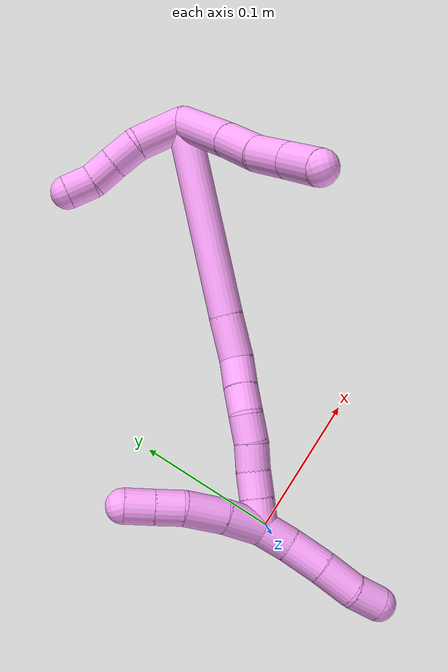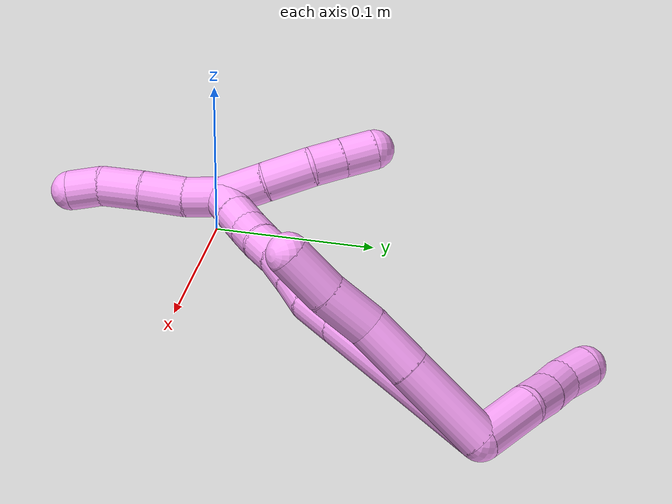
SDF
<sdf version="1.7">
 <world name="default">
  <model name="4">
   <static>0</static>
   <link name="4">
    <collision name="collision-cylinder-e_1_2_8">
     <pose>-0.020299 -0.009544 0.017297 0.504189 -0.798958 -0.216634</pose>
     <geometry><cylinder><radius>0.0125</radius><length>0.05665</length></cylinder></geometry>
     <surface>
      <friction><ode><mu>1.16</mu><mu2>1.16</mu2><slip1>0</slip1><slip2>0</slip2></ode></friction>
      <contact><ode><kp>1e+06</kp><kd>1</kd><max_vel>0</max_vel><min_depth>0.001</min_depth></ode></contact>
     </surface>
    </collision>
    <visual name="visual-cylinder-e_1_2_8">
     <pose>-0.020299 -0.009544 0.017297 0.504189 -0.798958 -0.216634</pose>
     <geometry><cylinder><radius>0.0125</radius><length>0.05665</length></cylinder></geometry>
     <material><ambient>1 0.65098 0.996078 1</ambient></material>
    </visual>
    <collision name="collision-cylinder-e_2_8_9">
     <pose>-0.052539 -0.025112 0.044328 0.554203 -0.806552 -0.241519</pose>
     <geometry><cylinder><radius>0.0125</radius><length>0.033084</length></cylinder></geometry>
     <surface>
      <friction><ode><mu>1.16</mu><mu2>1.16</mu2><slip1>0</slip1><slip2>0</slip2></ode></friction>
      <contact><ode><kp>1e+06</kp><kd>1</kd><max_vel>0</max_vel><min_depth>0.001</min_depth></ode></contact>
     </surface>
    </collision>
    <visual name="visual-cylinder-e_2_8_9">
     <pose>-0.052539 -0.025112 0.044328 0.554203 -0.806552 -0.241519</pose>
     <geometry><cylinder><radius>0.0125</radius><length>0.033084</length></cylinder></geometry>
     <material><ambient>1 0.65098 0.996078 1</ambient></material>
    </visual>
    <collision name="collision-cylinder-e_3_9_10">
     <pose>-0.073789 -0.035724 0.064716 0.406628 -0.676218 -0.144725</pose>
     <geometry><cylinder><radius>0.0125</radius><length>0.029746</length></cylinder></geometry>
     <surface>
      <friction><ode><mu>1.16</mu><mu2>1.16</mu2><slip1>0</slip1><slip2>0</slip2></ode></friction>
      <contact><ode><kp>1e+06</kp><kd>1</kd><max_vel>0</max_vel><min_depth>0.001</min_depth></ode></contact>
     </surface>
    </collision>
    <visual name="visual-cylinder-e_3_9_10">
     <pose>-0.073789 -0.035724 0.064716 0.406628 -0.676218 -0.144725</pose>
     <geometry><cylinder><radius>0.0125</radius><length>0.029746</length></cylinder></geometry>
     <material><ambient>1 0.65098 0.996078 1</ambient></material>
    </visual>
    <collision name="collision-cylinder-e_4_10_6">
     <pose>-0.093912 -0.044208 0.085407 0.370275 -0.787633 -0.155327</pose>
     <geometry><cylinder><radius>0.0125</radius><length>0.03052</length></cylinder></geometry>
     <surface>
      <friction><ode><mu>1.16</mu><mu2>1.16</mu2><slip1>0</slip1><slip2>0</slip2></ode></friction>
      <contact><ode><kp>1e+06</kp><kd>1</kd><max_vel>0</max_vel><min_depth>0.001</min_depth></ode></contact>
     </surface>
    </collision>
    <visual name="visual-cylinder-e_4_10_6">
     <pose>-0.093912 -0.044208 0.085407 0.370275 -0.787633 -0.155327</pose>
     <geometry><cylinder><radius>0.0125</radius><length>0.03052</length></cylinder></geometry>
     <material><ambient>1 0.65098 0.996078 1</ambient></material>
    </visual>
    <collision name="collision-cylinder-e_1_2_11">
     <pose>-0.00801 7.6e-05 -0.01729 -3.13719 -0.433849 3.12161</pose>
     <geometry><cylinder><radius>0.0125</radius><length>0.038112</length></cylinder></geometry>
     <surface>
      <friction><ode><mu>1.16</mu><mu2>1.16</mu2><slip1>0</slip1><slip2>0</slip2></ode></friction>
      <contact><ode><kp>1e+06</kp><kd>1</kd><max_vel>0</max_vel><min_depth>0.001</min_depth></ode></contact>
     </surface>
    </collision>
    <visual name="visual-cylinder-e_1_2_11">
     <pose>-0.00801 7.6e-05 -0.01729 -3.13719 -0.433849 3.12161</pose>
     <geometry><cylinder><radius>0.0125</radius><length>0.038112</length></cylinder></geometry>
     <material><ambient>1 0.65098 0.996078 1</ambient></material>
    </visual>
    <collision name="collision-cylinder-e_2_11_12">
     <pose>-0.018567 -0.002696 -0.044683 2.86683 -0.237985 -1.42601</pose>
     <geometry><cylinder><radius>0.0125</radius><length>0.021601</length></cylinder></geometry>
     <surface>
      <friction><ode><mu>1.16</mu><mu2>1.16</mu2><slip1>0</slip1><slip2>0</slip2></ode></friction>
      <contact><ode><kp>1e+06</kp><kd>1</kd><max_vel>0</max_vel><min_depth>0.001</min_depth></ode></contact>
     </surface>
    </collision>
    <visual name="visual-cylinder-e_2_11_12">
     <pose>-0.018567 -0.002696 -0.044683 2.86683 -0.237985 -1.42601</pose>
     <geometry><cylinder><radius>0.0125</radius><length>0.021601</length></cylinder></geometry>
     <material><ambient>1 0.65098 0.996078 1</ambient></material>
    </visual>
    <collision name="collision-cylinder-e_3_12_13">
     <pose>-0.024143 -0.008413 -0.063903 2.83671 -0.306936 -1.57763</pose>
     <geometry><cylinder><radius>0.0125</radius><length>0.020053</length></cylinder></geometry>
     <surface>
      <friction><ode><mu>1.16</mu><mu2>1.16</mu2><slip1>0</slip1><slip2>0</slip2></ode></friction>
      <contact><ode><kp>1e+06</kp><kd>1</kd><max_vel>0</max_vel><min_depth>0.001</min_depth></ode></contact>
     </surface>
    </collision>
    <visual name="visual-cylinder-e_3_12_13">
     <pose>-0.024143 -0.008413 -0.063903 2.83671 -0.306936 -1.57763</pose>
     <geometry><cylinder><radius>0.0125</radius><length>0.020053</length></cylinder></geometry>
     <material><ambient>1 0.65098 0.996078 1</ambient></material>
    </visual>
    <collision name="collision-cylinder-e_4_13_5">
     <pose>-0.030421 -0.011247 -0.082601 -3.13795 -0.326978 3.11954</pose>
     <geometry><cylinder><radius>0.0125</radius><length>0.020234</length></cylinder></geometry>
     <surface>
      <friction><ode><mu>1.16</mu><mu2>1.16</mu2><slip1>0</slip1><slip2>0</slip2></ode></friction>
      <contact><ode><kp>1e+06</kp><kd>1</kd><max_vel>0</max_vel><min_depth>0.001</min_depth></ode></contact>
     </surface>
    </collision>
    <visual name="visual-cylinder-e_4_13_5">
     <pose>-0.030421 -0.011247 -0.082601 -3.13795 -0.326978 3.11954</pose>
     <geometry><cylinder><radius>0.0125</radius><length>0.020234</length></cylinder></geometry>
     <material><ambient>1 0.65098 0.996078 1</ambient></material>
    </visual>
    <collision name="collision-cylinder-e_1_2_14">
     <pose>-0.028245 -0.066748 -0.006624 1.66971 -0.398555 -0.438805</pose>
     <geometry><cylinder><radius>0.0125</radius><length>0.145561</length></cylinder></geometry>
     <surface>
      <friction><ode><mu>1.16</mu><mu2>1.16</mu2><slip1>0</slip1><slip2>0</slip2></ode></friction>
      <contact><ode><kp>1e+06</kp><kd>1</kd><max_vel>0</max_vel><min_depth>0.001</min_depth></ode></contact>
     </surface>
    </collision>
    <visual name="visual-cylinder-e_1_2_14">
     <pose>-0.028245 -0.066748 -0.006624 1.66971 -0.398555 -0.438805</pose>
     <geometry><cylinder><radius>0.0125</radius><length>0.145561</length></cylinder></geometry>
     <material><ambient>1 0.65098 0.996078 1</ambient></material>
    </visual>
    <collision name="collision-cylinder-e_2_14_15">
     <pose>-0.063034 -0.148316 -0.0143 1.64164 -0.414879 -0.444403</pose>
     <geometry><cylinder><radius>0.0125</radius><length>0.032467</length></cylinder></geometry>
     <surface>
      <friction><ode><mu>1.16</mu><mu2>1.16</mu2><slip1>0</slip1><slip2>0</slip2></ode></friction>
      <contact><ode><kp>1e+06</kp><kd>1</kd><max_vel>0</max_vel><min_depth>0.001</min_depth></ode></contact>
     </surface>
    </collision>
    <visual name="visual-cylinder-e_2_14_15">
     <pose>-0.063034 -0.148316 -0.0143 1.64164 -0.414879 -0.444403</pose>
     <geometry><cylinder><radius>0.0125</radius><length>0.032467</length></cylinder></geometry>
     <material><ambient>1 0.65098 0.996078 1</ambient></material>
    </visual>
    <collision name="collision-cylinder-e_3_15_16">
     <pose>-0.076184 -0.171347 -0.016216 1.67565 -0.674811 -0.743151</pose>
     <geometry><cylinder><radius>0.0125</radius><length>0.02115</length></cylinder></geometry>
     <surface>
      <friction><ode><mu>1.16</mu><mu2>1.16</mu2><slip1>0</slip1><slip2>0</slip2></ode></friction>
      <contact><ode><kp>1e+06</kp><kd>1</kd><max_vel>0</max_vel><min_depth>0.001</min_depth></ode></contact>
     </surface>
    </collision>
    <visual name="visual-cylinder-e_3_15_16">
     <pose>-0.076184 -0.171347 -0.016216 1.67565 -0.674811 -0.743151</pose>
     <geometry><cylinder><radius>0.0125</radius><length>0.02115</length></cylinder></geometry>
     <material><ambient>1 0.65098 0.996078 1</ambient></material>
    </visual>
    <collision name="collision-cylinder-e_4_16_17">
     <pose>-0.088985 -0.187578 -0.017562 1.63085 -0.656848 -0.694419</pose>
     <geometry><cylinder><radius>0.0125</radius><length>0.020288</length></cylinder></geometry>
     <surface>
      <friction><ode><mu>1.16</mu><mu2>1.16</mu2><slip1>0</slip1><slip2>0</slip2></ode></friction>
      <contact><ode><kp>1e+06</kp><kd>1</kd><max_vel>0</max_vel><min_depth>0.001</min_depth></ode></contact>
     </surface>
    </collision>
    <visual name="visual-cylinder-e_4_16_17">
     <pose>-0.088985 -0.187578 -0.017562 1.63085 -0.656848 -0.694419</pose>
     <geometry><cylinder><radius>0.0125</radius><length>0.020288</length></cylinder></geometry>
     <material><ambient>1 0.65098 0.996078 1</ambient></material>
    </visual>
    <collision name="collision-cylinder-e_5_17_18">
     <pose>-0.099516 -0.204818 -0.019145 1.68965 -0.436916 -0.490122</pose>
     <geometry><cylinder><radius>0.0125</radius><length>0.020501</length></cylinder></geometry>
     <surface>
      <friction><ode><mu>1.16</mu><mu2>1.16</mu2><slip1>0</slip1><slip2>0</slip2></ode></friction>
      <contact><ode><kp>1e+06</kp><kd>1</kd><max_vel>0</max_vel><min_depth>0.001</min_depth></ode></contact>
     </surface>
    </collision>
    <visual name="visual-cylinder-e_5_17_18">
     <pose>-0.099516 -0.204818 -0.019145 1.68965 -0.436916 -0.490122</pose>
     <geometry><cylinder><radius>0.0125</radius><length>0.020501</length></cylinder></geometry>
     <material><ambient>1 0.65098 0.996078 1</ambient></material>
    </visual>
    <collision name="collision-cylinder-e_6_18_19">
     <pose>-0.10756 -0.22299 -0.022758 1.84435 -0.379416 -0.496182</pose>
     <geometry><cylinder><radius>0.0125</radius><length>0.020014</length></cylinder></geometry>
     <surface>
      <friction><ode><mu>1.16</mu><mu2>1.16</mu2><slip1>0</slip1><slip2>0</slip2></ode></friction>
      <contact><ode><kp>1e+06</kp><kd>1</kd><max_vel>0</max_vel><min_depth>0.001</min_depth></ode></contact>
     </surface>
    </collision>
    <visual name="visual-cylinder-e_6_18_19">
     <pose>-0.10756 -0.22299 -0.022758 1.84435 -0.379416 -0.496182</pose>
     <geometry><cylinder><radius>0.0125</radius><length>0.020014</length></cylinder></geometry>
     <material><ambient>1 0.65098 0.996078 1</ambient></material>
    </visual>
    <collision name="collision-cylinder-e_7_19_20">
     <pose>-0.116106 -0.240578 -0.026706 1.73562 -0.504902 -0.590985</pose>
     <geometry><cylinder><radius>0.0125</radius><length>0.02001</length></cylinder></geometry>
     <surface>
      <friction><ode><mu>1.16</mu><mu2>1.16</mu2><slip1>0</slip1><slip2>0</slip2></ode></friction>
      <contact><ode><kp>1e+06</kp><kd>1</kd><max_vel>0</max_vel><min_depth>0.001</min_depth></ode></contact>
     </surface>
    </collision>
    <visual name="visual-cylinder-e_7_19_20">
     <pose>-0.116106 -0.240578 -0.026706 1.73562 -0.504902 -0.590985</pose>
     <geometry><cylinder><radius>0.0125</radius><length>0.02001</length></cylinder></geometry>
     <material><ambient>1 0.65098 0.996078 1</ambient></material>
    </visual>
    <collision name="collision-cylinder-e_8_20_1">
     <pose>-0.126095 -0.257665 -0.029622 1.74415 -0.540634 -0.637205</pose>
     <geometry><cylinder><radius>0.0125</radius><length>0.020008</length></cylinder></geometry>
     <surface>
      <friction><ode><mu>1.16</mu><mu2>1.16</mu2><slip1>0</slip1><slip2>0</slip2></ode></friction>
      <contact><ode><kp>1e+06</kp><kd>1</kd><max_vel>0</max_vel><min_depth>0.001</min_depth></ode></contact>
     </surface>
    </collision>
    <visual name="visual-cylinder-e_8_20_1">
     <pose>-0.126095 -0.257665 -0.029622 1.74415 -0.540634 -0.637205</pose>
     <geometry><cylinder><radius>0.0125</radius><length>0.020008</length></cylinder></geometry>
     <material><ambient>1 0.65098 0.996078 1</ambient></material>
    </visual>
    <collision name="collision-cylinder-e_1_1_21">
     <pose>-0.135653 -0.255595 -0.040004 -2.27319 -0.309675 0.649377</pose>
     <geometry><cylinder><radius>0.0125</radius><length>0.028938</length></cylinder></geometry>
     <surface>
      <friction><ode><mu>1.16</mu><mu2>1.16</mu2><slip1>0</slip1><slip2>0</slip2></ode></friction>
      <contact><ode><kp>1e+06</kp><kd>1</kd><max_vel>0</max_vel><min_depth>0.001</min_depth></ode></contact>
     </surface>
    </collision>
    <visual name="visual-cylinder-e_1_1_21">
     <pose>-0.135653 -0.255595 -0.040004 -2.27319 -0.309675 0.649377</pose>
     <geometry><cylinder><radius>0.0125</radius><length>0.028938</length></cylinder></geometry>
     <material><ambient>1 0.65098 0.996078 1</ambient></material>
    </visual>
    <collision name="collision-cylinder-e_2_21_22">
     <pose>-0.144573 -0.235435 -0.059456 -2.40109 -0.305688 0.755611</pose>
     <geometry><cylinder><radius>0.0125</radius><length>0.029971</length></cylinder></geometry>
     <surface>
      <friction><ode><mu>1.16</mu><mu2>1.16</mu2><slip1>0</slip1><slip2>0</slip2></ode></friction>
      <contact><ode><kp>1e+06</kp><kd>1</kd><max_vel>0</max_vel><min_depth>0.001</min_depth></ode></contact>
     </surface>
    </collision>
    <visual name="visual-cylinder-e_2_21_22">
     <pose>-0.144573 -0.235435 -0.059456 -2.40109 -0.305688 0.755611</pose>
     <geometry><cylinder><radius>0.0125</radius><length>0.029971</length></cylinder></geometry>
     <material><ambient>1 0.65098 0.996078 1</ambient></material>
    </visual>
    <collision name="collision-cylinder-e_3_22_23">
     <pose>-0.151564 -0.221118 -0.07853 -2.63998 -0.249827 0.911411</pose>
     <geometry><cylinder><radius>0.0125</radius><length>0.02007</length></cylinder></geometry>
     <surface>
      <friction><ode><mu>1.16</mu><mu2>1.16</mu2><slip1>0</slip1><slip2>0</slip2></ode></friction>
      <contact><ode><kp>1e+06</kp><kd>1</kd><max_vel>0</max_vel><min_depth>0.001</min_depth></ode></contact>
     </surface>
    </collision>
    <visual name="visual-cylinder-e_3_22_23">
     <pose>-0.151564 -0.221118 -0.07853 -2.63998 -0.249827 0.911411</pose>
     <geometry><cylinder><radius>0.0125</radius><length>0.02007</length></cylinder></geometry>
     <material><ambient>1 0.65098 0.996078 1</ambient></material>
    </visual>
    <collision name="collision-cylinder-e_4_23_4">
     <pose>-0.15654 -0.211458 -0.095966 -2.63158 -0.239717 0.865583</pose>
     <geometry><cylinder><radius>0.0125</radius><length>0.021021</length></cylinder></geometry>
     <surface>
      <friction><ode><mu>1.16</mu><mu2>1.16</mu2><slip1>0</slip1><slip2>0</slip2></ode></friction>
      <contact><ode><kp>1e+06</kp><kd>1</kd><max_vel>0</max_vel><min_depth>0.001</min_depth></ode></contact>
     </surface>
    </collision>
    <visual name="visual-cylinder-e_4_23_4">
     <pose>-0.15654 -0.211458 -0.095966 -2.63158 -0.239717 0.865583</pose>
     <geometry><cylinder><radius>0.0125</radius><length>0.021021</length></cylinder></geometry>
     <material><ambient>1 0.65098 0.996078 1</ambient></material>
    </visual>
    <collision name="collision-cylinder-e_1_1_24">
     <pose>-0.13122 -0.275479 -0.024223 0.937285 0.002025 0.001025</pose>
     <geometry><cylinder><radius>0.0125</radius><length>0.023239</length></cylinder></geometry>
     <surface>
      <friction><ode><mu>1.16</mu><mu2>1.16</mu2><slip1>0</slip1><slip2>0</slip2></ode></friction>
      <contact><ode><kp>1e+06</kp><kd>1</kd><max_vel>0</max_vel><min_depth>0.001</min_depth></ode></contact>
     </surface>
    </collision>
    <visual name="visual-cylinder-e_1_1_24">
     <pose>-0.13122 -0.275479 -0.024223 0.937285 0.002025 0.001025</pose>
     <geometry><cylinder><radius>0.0125</radius><length>0.023239</length></cylinder></geometry>
     <material><ambient>1 0.65098 0.996078 1</ambient></material>
    </visual>
    <collision name="collision-cylinder-e_2_24_25">
     <pose>-0.133366 -0.295943 -0.008834 0.91665 -0.153835 -0.07601</pose>
     <geometry><cylinder><radius>0.0125</radius><length>0.028307</length></cylinder></geometry>
     <surface>
      <friction><ode><mu>1.16</mu><mu2>1.16</mu2><slip1>0</slip1><slip2>0</slip2></ode></friction>
      <contact><ode><kp>1e+06</kp><kd>1</kd><max_vel>0</max_vel><min_depth>0.001</min_depth></ode></contact>
     </surface>
    </collision>
    <visual name="visual-cylinder-e_2_24_25">
     <pose>-0.133366 -0.295943 -0.008834 0.91665 -0.153835 -0.07601</pose>
     <geometry><cylinder><radius>0.0125</radius><length>0.028307</length></cylinder></geometry>
     <material><ambient>1 0.65098 0.996078 1</ambient></material>
    </visual>
    <collision name="collision-cylinder-e_3_25_26">
     <pose>-0.137185 -0.318402 0.00705 0.995074 -0.121255 -0.065912</pose>
     <geometry><cylinder><radius>0.0125</radius><length>0.027286</length></cylinder></geometry>
     <surface>
      <friction><ode><mu>1.16</mu><mu2>1.16</mu2><slip1>0</slip1><slip2>0</slip2></ode></friction>
      <contact><ode><kp>1e+06</kp><kd>1</kd><max_vel>0</max_vel><min_depth>0.001</min_depth></ode></contact>
     </surface>
    </collision>
    <visual name="visual-cylinder-e_3_25_26">
     <pose>-0.137185 -0.318402 0.00705 0.995074 -0.121255 -0.065912</pose>
     <geometry><cylinder><radius>0.0125</radius><length>0.027286</length></cylinder></geometry>
     <material><ambient>1 0.65098 0.996078 1</ambient></material>
    </visual>
    <collision name="collision-cylinder-e_4_26_3">
     <pose>-0.137554 -0.338229 0.020641 0.937428 0.121318 0.061485</pose>
     <geometry><cylinder><radius>0.0125</radius><length>0.021168</length></cylinder></geometry>
     <surface>
      <friction><ode><mu>1.16</mu><mu2>1.16</mu2><slip1>0</slip1><slip2>0</slip2></ode></friction>
      <contact><ode><kp>1e+06</kp><kd>1</kd><max_vel>0</max_vel><min_depth>0.001</min_depth></ode></contact>
     </surface>
    </collision>
    <visual name="visual-cylinder-e_4_26_3">
     <pose>-0.137554 -0.338229 0.020641 0.937428 0.121318 0.061485</pose>
     <geometry><cylinder><radius>0.0125</radius><length>0.021168</length></cylinder></geometry>
     <material><ambient>1 0.65098 0.996078 1</ambient></material>
    </visual>
    <collision name="collision-sphere-3">
     <pose>-0.136273 -0.346698 0.026859 0 -0 0</pose>
     <geometry><sphere><radius>0.0125</radius></sphere></geometry>
     <surface>
      <friction><ode><mu>1.16</mu><mu2>1.16</mu2><slip1>0</slip1><slip2>0</slip2></ode></friction>
      <contact><ode><kp>1e+06</kp><kd>1</kd><max_vel>0</max_vel><min_depth>0.001</min_depth></ode></contact>
     </surface>
    </collision>
    <visual name="visual-sphere-3">
     <pose>-0.136273 -0.346698 0.026859 0 -0 0</pose>
     <geometry><sphere><radius>0.0125</radius></sphere></geometry>
     <material><ambient>1 0.65098 0.996078 1</ambient></material>
    </visual>
    <collision name="collision-sphere-26">
     <pose>-0.138835 -0.329761 0.014423 0 -0 0</pose>
     <geometry><sphere><radius>0.0125</radius></sphere></geometry>
     <surface>
      <friction><ode><mu>1.16</mu><mu2>1.16</mu2><slip1>0</slip1><slip2>0</slip2></ode></friction>
      <contact><ode><kp>1e+06</kp><kd>1</kd><max_vel>0</max_vel><min_depth>0.001</min_depth></ode></contact>
     </surface>
    </collision>
    <visual name="visual-sphere-26">
     <pose>-0.138835 -0.329761 0.014423 0 -0 0</pose>
     <geometry><sphere><radius>0.0125</radius></sphere></geometry>
     <material><ambient>1 0.65098 0.996078 1</ambient></material>
    </visual>
    <collision name="collision-sphere-25">
     <pose>-0.135534 -0.307042 -0.000323 0 -0 0</pose>
     <geometry><sphere><radius>0.0125</radius></sphere></geometry>
     <surface>
      <friction><ode><mu>1.16</mu><mu2>1.16</mu2><slip1>0</slip1><slip2>0</slip2></ode></friction>
      <contact><ode><kp>1e+06</kp><kd>1</kd><max_vel>0</max_vel><min_depth>0.001</min_depth></ode></contact>
     </surface>
    </collision>
    <visual name="visual-sphere-25">
     <pose>-0.135534 -0.307042 -0.000323 0 -0 0</pose>
     <geometry><sphere><radius>0.0125</radius></sphere></geometry>
     <material><ambient>1 0.65098 0.996078 1</ambient></material>
    </visual>
    <collision name="collision-sphere-24">
     <pose>-0.131197 -0.284843 -0.017344 0 -0 0</pose>
     <geometry><sphere><radius>0.0125</radius></sphere></geometry>
     <surface>
      <friction><ode><mu>1.16</mu><mu2>1.16</mu2><slip1>0</slip1><slip2>0</slip2></ode></friction>
      <contact><ode><kp>1e+06</kp><kd>1</kd><max_vel>0</max_vel><min_depth>0.001</min_depth></ode></contact>
     </surface>
    </collision>
    <visual name="visual-sphere-24">
     <pose>-0.131197 -0.284843 -0.017344 0 -0 0</pose>
     <geometry><sphere><radius>0.0125</radius></sphere></geometry>
     <material><ambient>1 0.65098 0.996078 1</ambient></material>
    </visual>
    <collision name="collision-sphere-4">
     <pose>-0.159035 -0.206474 -0.104877 0 -0 0</pose>
     <geometry><sphere><radius>0.0125</radius></sphere></geometry>
     <surface>
      <friction><ode><mu>1.16</mu><mu2>1.16</mu2><slip1>0</slip1><slip2>0</slip2></ode></friction>
      <contact><ode><kp>1e+06</kp><kd>1</kd><max_vel>0</max_vel><min_depth>0.001</min_depth></ode></contact>
     </surface>
    </collision>
    <visual name="visual-sphere-4">
     <pose>-0.159035 -0.206474 -0.104877 0 -0 0</pose>
     <geometry><sphere><radius>0.0125</radius></sphere></geometry>
     <material><ambient>1 0.65098 0.996078 1</ambient></material>
    </visual>
    <collision name="collision-sphere-23">
     <pose>-0.154045 -0.216442 -0.087056 0 -0 0</pose>
     <geometry><sphere><radius>0.0125</radius></sphere></geometry>
     <surface>
      <friction><ode><mu>1.16</mu><mu2>1.16</mu2><slip1>0</slip1><slip2>0</slip2></ode></friction>
      <contact><ode><kp>1e+06</kp><kd>1</kd><max_vel>0</max_vel><min_depth>0.001</min_depth></ode></contact>
     </surface>
    </collision>
    <visual name="visual-sphere-23">
     <pose>-0.154045 -0.216442 -0.087056 0 -0 0</pose>
     <geometry><sphere><radius>0.0125</radius></sphere></geometry>
     <material><ambient>1 0.65098 0.996078 1</ambient></material>
    </visual>
    <collision name="collision-sphere-22">
     <pose>-0.149083 -0.225793 -0.070005 0 -0 0</pose>
     <geometry><sphere><radius>0.0125</radius></sphere></geometry>
     <surface>
      <friction><ode><mu>1.16</mu><mu2>1.16</mu2><slip1>0</slip1><slip2>0</slip2></ode></friction>
      <contact><ode><kp>1e+06</kp><kd>1</kd><max_vel>0</max_vel><min_depth>0.001</min_depth></ode></contact>
     </surface>
    </collision>
    <visual name="visual-sphere-22">
     <pose>-0.149083 -0.225793 -0.070005 0 -0 0</pose>
     <geometry><sphere><radius>0.0125</radius></sphere></geometry>
     <material><ambient>1 0.65098 0.996078 1</ambient></material>
    </visual>
    <collision name="collision-sphere-21">
     <pose>-0.140063 -0.245076 -0.048907 0 -0 0</pose>
     <geometry><sphere><radius>0.0125</radius></sphere></geometry>
     <surface>
      <friction><ode><mu>1.16</mu><mu2>1.16</mu2><slip1>0</slip1><slip2>0</slip2></ode></friction>
      <contact><ode><kp>1e+06</kp><kd>1</kd><max_vel>0</max_vel><min_depth>0.001</min_depth></ode></contact>
     </surface>
    </collision>
    <visual name="visual-sphere-21">
     <pose>-0.140063 -0.245076 -0.048907 0 -0 0</pose>
     <geometry><sphere><radius>0.0125</radius></sphere></geometry>
     <material><ambient>1 0.65098 0.996078 1</ambient></material>
    </visual>
    <collision name="collision-sphere-1">
     <pose>-0.131244 -0.266114 -0.031101 0 -0 0</pose>
     <geometry><sphere><radius>0.0125</radius></sphere></geometry>
     <surface>
      <friction><ode><mu>1.16</mu><mu2>1.16</mu2><slip1>0</slip1><slip2>0</slip2></ode></friction>
      <contact><ode><kp>1e+06</kp><kd>1</kd><max_vel>0</max_vel><min_depth>0.001</min_depth></ode></contact>
     </surface>
    </collision>
    <visual name="visual-sphere-1">
     <pose>-0.131244 -0.266114 -0.031101 0 -0 0</pose>
     <geometry><sphere><radius>0.0125</radius></sphere></geometry>
     <material><ambient>1 0.65098 0.996078 1</ambient></material>
    </visual>
    <collision name="collision-sphere-11">
     <pose>-0.016021 0.000152 -0.03458 0 -0 0</pose>
     <geometry><sphere><radius>0.0125</radius></sphere></geometry>
     <surface>
      <friction><ode><mu>1.16</mu><mu2>1.16</mu2><slip1>0</slip1><slip2>0</slip2></ode></friction>
      <contact><ode><kp>1e+06</kp><kd>1</kd><max_vel>0</max_vel><min_depth>0.001</min_depth></ode></contact>
     </surface>
    </collision>
    <visual name="visual-sphere-11">
     <pose>-0.016021 0.000152 -0.03458 0 -0 0</pose>
     <geometry><sphere><radius>0.0125</radius></sphere></geometry>
     <material><ambient>1 0.65098 0.996078 1</ambient></material>
    </visual>
    <collision name="collision-sphere-6">
     <pose>-0.104726 -0.048104 0.095443 0 -0 0</pose>
     <geometry><sphere><radius>0.0125</radius></sphere></geometry>
     <surface>
      <friction><ode><mu>1.16</mu><mu2>1.16</mu2><slip1>0</slip1><slip2>0</slip2></ode></friction>
      <contact><ode><kp>1e+06</kp><kd>1</kd><max_vel>0</max_vel><min_depth>0.001</min_depth></ode></contact>
     </surface>
    </collision>
    <visual name="visual-sphere-6">
     <pose>-0.104726 -0.048104 0.095443 0 -0 0</pose>
     <geometry><sphere><radius>0.0125</radius></sphere></geometry>
     <material><ambient>1 0.65098 0.996078 1</ambient></material>
    </visual>
    <collision name="collision-sphere-10">
     <pose>-0.083097 -0.040312 0.07537 0 -0 0</pose>
     <geometry><sphere><radius>0.0125</radius></sphere></geometry>
     <surface>
      <friction><ode><mu>1.16</mu><mu2>1.16</mu2><slip1>0</slip1><slip2>0</slip2></ode></friction>
      <contact><ode><kp>1e+06</kp><kd>1</kd><max_vel>0</max_vel><min_depth>0.001</min_depth></ode></contact>
     </surface>
    </collision>
    <visual name="visual-sphere-10">
     <pose>-0.083097 -0.040312 0.07537 0 -0 0</pose>
     <geometry><sphere><radius>0.0125</radius></sphere></geometry>
     <material><ambient>1 0.65098 0.996078 1</ambient></material>
    </visual>
    <collision name="collision-sphere-9">
     <pose>-0.064481 -0.031136 0.054061 0 -0 0</pose>
     <geometry><sphere><radius>0.0125</radius></sphere></geometry>
     <surface>
      <friction><ode><mu>1.16</mu><mu2>1.16</mu2><slip1>0</slip1><slip2>0</slip2></ode></friction>
      <contact><ode><kp>1e+06</kp><kd>1</kd><max_vel>0</max_vel><min_depth>0.001</min_depth></ode></contact>
     </surface>
    </collision>
    <visual name="visual-sphere-9">
     <pose>-0.064481 -0.031136 0.054061 0 -0 0</pose>
     <geometry><sphere><radius>0.0125</radius></sphere></geometry>
     <material><ambient>1 0.65098 0.996078 1</ambient></material>
    </visual>
    <collision name="collision-sphere-2">
     <geometry><sphere><radius>0.0125</radius></sphere></geometry>
     <surface>
      <friction><ode><mu>1.16</mu><mu2>1.16</mu2><slip1>0</slip1><slip2>0</slip2></ode></friction>
      <contact><ode><kp>1e+06</kp><kd>1</kd><max_vel>0</max_vel><min_depth>0.001</min_depth></ode></contact>
     </surface>
    </collision>
    <visual name="visual-sphere-2">
     <geometry><sphere><radius>0.0125</radius></sphere></geometry>
     <material><ambient>1 0.65098 0.996078 1</ambient></material>
    </visual>
    <collision name="collision-sphere-19">
     <pose>-0.111267 -0.23194 -0.025269 0 -0 0</pose>
     <geometry><sphere><radius>0.0125</radius></sphere></geometry>
     <surface>
      <friction><ode><mu>1.16</mu><mu2>1.16</mu2><slip1>0</slip1><slip2>0</slip2></ode></friction>
      <contact><ode><kp>1e+06</kp><kd>1</kd><max_vel>0</max_vel><min_depth>0.001</min_depth></ode></contact>
     </surface>
    </collision>
    <visual name="visual-sphere-19">
     <pose>-0.111267 -0.23194 -0.025269 0 -0 0</pose>
     <geometry><sphere><radius>0.0125</radius></sphere></geometry>
     <material><ambient>1 0.65098 0.996078 1</ambient></material>
    </visual>
    <collision name="collision-sphere-8">
     <pose>-0.040597 -0.019088 0.034595 0 -0 0</pose>
     <geometry><sphere><radius>0.0125</radius></sphere></geometry>
     <surface>
      <friction><ode><mu>1.16</mu><mu2>1.16</mu2><slip1>0</slip1><slip2>0</slip2></ode></friction>
      <contact><ode><kp>1e+06</kp><kd>1</kd><max_vel>0</max_vel><min_depth>0.001</min_depth></ode></contact>
     </surface>
    </collision>
    <visual name="visual-sphere-8">
     <pose>-0.040597 -0.019088 0.034595 0 -0 0</pose>
     <geometry><sphere><radius>0.0125</radius></sphere></geometry>
     <material><ambient>1 0.65098 0.996078 1</ambient></material>
    </visual>
    <collision name="collision-sphere-12">
     <pose>-0.021113 -0.005543 -0.054785 0 -0 0</pose>
     <geometry><sphere><radius>0.0125</radius></sphere></geometry>
     <surface>
      <friction><ode><mu>1.16</mu><mu2>1.16</mu2><slip1>0</slip1><slip2>0</slip2></ode></friction>
      <contact><ode><kp>1e+06</kp><kd>1</kd><max_vel>0</max_vel><min_depth>0.001</min_depth></ode></contact>
     </surface>
    </collision>
    <visual name="visual-sphere-12">
     <pose>-0.021113 -0.005543 -0.054785 0 -0 0</pose>
     <geometry><sphere><radius>0.0125</radius></sphere></geometry>
     <material><ambient>1 0.65098 0.996078 1</ambient></material>
    </visual>
    <collision name="collision-sphere-13">
     <pose>-0.027172 -0.011282 -0.07302 0 -0 0</pose>
     <geometry><sphere><radius>0.0125</radius></sphere></geometry>
     <surface>
      <friction><ode><mu>1.16</mu><mu2>1.16</mu2><slip1>0</slip1><slip2>0</slip2></ode></friction>
      <contact><ode><kp>1e+06</kp><kd>1</kd><max_vel>0</max_vel><min_depth>0.001</min_depth></ode></contact>
     </surface>
    </collision>
    <visual name="visual-sphere-13">
     <pose>-0.027172 -0.011282 -0.07302 0 -0 0</pose>
     <geometry><sphere><radius>0.0125</radius></sphere></geometry>
     <material><ambient>1 0.65098 0.996078 1</ambient></material>
    </visual>
    <collision name="collision-sphere-5">
     <pose>-0.033671 -0.011212 -0.092182 0 -0 0</pose>
     <geometry><sphere><radius>0.0125</radius></sphere></geometry>
     <surface>
      <friction><ode><mu>1.16</mu><mu2>1.16</mu2><slip1>0</slip1><slip2>0</slip2></ode></friction>
      <contact><ode><kp>1e+06</kp><kd>1</kd><max_vel>0</max_vel><min_depth>0.001</min_depth></ode></contact>
     </surface>
    </collision>
    <visual name="visual-sphere-5">
     <pose>-0.033671 -0.011212 -0.092182 0 -0 0</pose>
     <geometry><sphere><radius>0.0125</radius></sphere></geometry>
     <material><ambient>1 0.65098 0.996078 1</ambient></material>
    </visual>
    <collision name="collision-sphere-14">
     <pose>-0.05649 -0.133497 -0.013248 0 -0 0</pose>
     <geometry><sphere><radius>0.0125</radius></sphere></geometry>
     <surface>
      <friction><ode><mu>1.16</mu><mu2>1.16</mu2><slip1>0</slip1><slip2>0</slip2></ode></friction>
      <contact><ode><kp>1e+06</kp><kd>1</kd><max_vel>0</max_vel><min_depth>0.001</min_depth></ode></contact>
     </surface>
    </collision>
    <visual name="visual-sphere-14">
     <pose>-0.05649 -0.133497 -0.013248 0 -0 0</pose>
     <geometry><sphere><radius>0.0125</radius></sphere></geometry>
     <material><ambient>1 0.65098 0.996078 1</ambient></material>
    </visual>
    <collision name="collision-sphere-15">
     <pose>-0.069577 -0.163135 -0.015351 0 -0 0</pose>
     <geometry><sphere><radius>0.0125</radius></sphere></geometry>
     <surface>
      <friction><ode><mu>1.16</mu><mu2>1.16</mu2><slip1>0</slip1><slip2>0</slip2></ode></friction>
      <contact><ode><kp>1e+06</kp><kd>1</kd><max_vel>0</max_vel><min_depth>0.001</min_depth></ode></contact>
     </surface>
    </collision>
    <visual name="visual-sphere-15">
     <pose>-0.069577 -0.163135 -0.015351 0 -0 0</pose>
     <geometry><sphere><radius>0.0125</radius></sphere></geometry>
     <material><ambient>1 0.65098 0.996078 1</ambient></material>
    </visual>
    <collision name="collision-sphere-16">
     <pose>-0.082791 -0.179559 -0.01708 0 -0 0</pose>
     <geometry><sphere><radius>0.0125</radius></sphere></geometry>
     <surface>
      <friction><ode><mu>1.16</mu><mu2>1.16</mu2><slip1>0</slip1><slip2>0</slip2></ode></friction>
      <contact><ode><kp>1e+06</kp><kd>1</kd><max_vel>0</max_vel><min_depth>0.001</min_depth></ode></contact>
     </surface>
    </collision>
    <visual name="visual-sphere-16">
     <pose>-0.082791 -0.179559 -0.01708 0 -0 0</pose>
     <geometry><sphere><radius>0.0125</radius></sphere></geometry>
     <material><ambient>1 0.65098 0.996078 1</ambient></material>
    </visual>
    <collision name="collision-sphere-17">
     <pose>-0.095179 -0.195596 -0.018044 0 -0 0</pose>
     <geometry><sphere><radius>0.0125</radius></sphere></geometry>
     <surface>
      <friction><ode><mu>1.16</mu><mu2>1.16</mu2><slip1>0</slip1><slip2>0</slip2></ode></friction>
      <contact><ode><kp>1e+06</kp><kd>1</kd><max_vel>0</max_vel><min_depth>0.001</min_depth></ode></contact>
     </surface>
    </collision>
    <visual name="visual-sphere-17">
     <pose>-0.095179 -0.195596 -0.018044 0 -0 0</pose>
     <geometry><sphere><radius>0.0125</radius></sphere></geometry>
     <material><ambient>1 0.65098 0.996078 1</ambient></material>
    </visual>
    <collision name="collision-sphere-18">
     <pose>-0.103854 -0.21404 -0.020246 0 -0 0</pose>
     <geometry><sphere><radius>0.0125</radius></sphere></geometry>
     <surface>
      <friction><ode><mu>1.16</mu><mu2>1.16</mu2><slip1>0</slip1><slip2>0</slip2></ode></friction>
      <contact><ode><kp>1e+06</kp><kd>1</kd><max_vel>0</max_vel><min_depth>0.001</min_depth></ode></contact>
     </surface>
    </collision>
    <visual name="visual-sphere-18">
     <pose>-0.103854 -0.21404 -0.020246 0 -0 0</pose>
     <geometry><sphere><radius>0.0125</radius></sphere></geometry>
     <material><ambient>1 0.65098 0.996078 1</ambient></material>
    </visual>
    <collision name="collision-sphere-20">
     <pose>-0.120946 -0.249216 -0.028142 0 -0 0</pose>
     <geometry><sphere><radius>0.0125</radius></sphere></geometry>
     <surface>
      <friction><ode><mu>1.16</mu><mu2>1.16</mu2><slip1>0</slip1><slip2>0</slip2></ode></friction>
      <contact><ode><kp>1e+06</kp><kd>1</kd><max_vel>0</max_vel><min_depth>0.001</min_depth></ode></contact>
     </surface>
    </collision>
    <visual name="visual-sphere-20">
     <pose>-0.120946 -0.249216 -0.028142 0 -0 0</pose>
     <geometry><sphere><radius>0.0125</radius></sphere></geometry>
     <material><ambient>1 0.65098 0.996078 1</ambient></material>
    </visual>
    <inertial>
     <pose>-0.075253 -0.131719 -0.011224 0 -0 0</pose>
     <mass>0.75</mass>
     <inertia>
      <ixx>0.000124</ixx>
      <ixy>0</ixy>
      <ixz>0</ixz>
      <iyy>-7.9e-05</iyy>
      <iyz>0</iyz>
      <izz>0.000396</izz>
     </inertia>
    </inertial>
   </link>
   <pose>0.214315 0.207462 0.019243 0.90406 1.05928 0.265804</pose>
  </model>
 </world>
</sdf>
